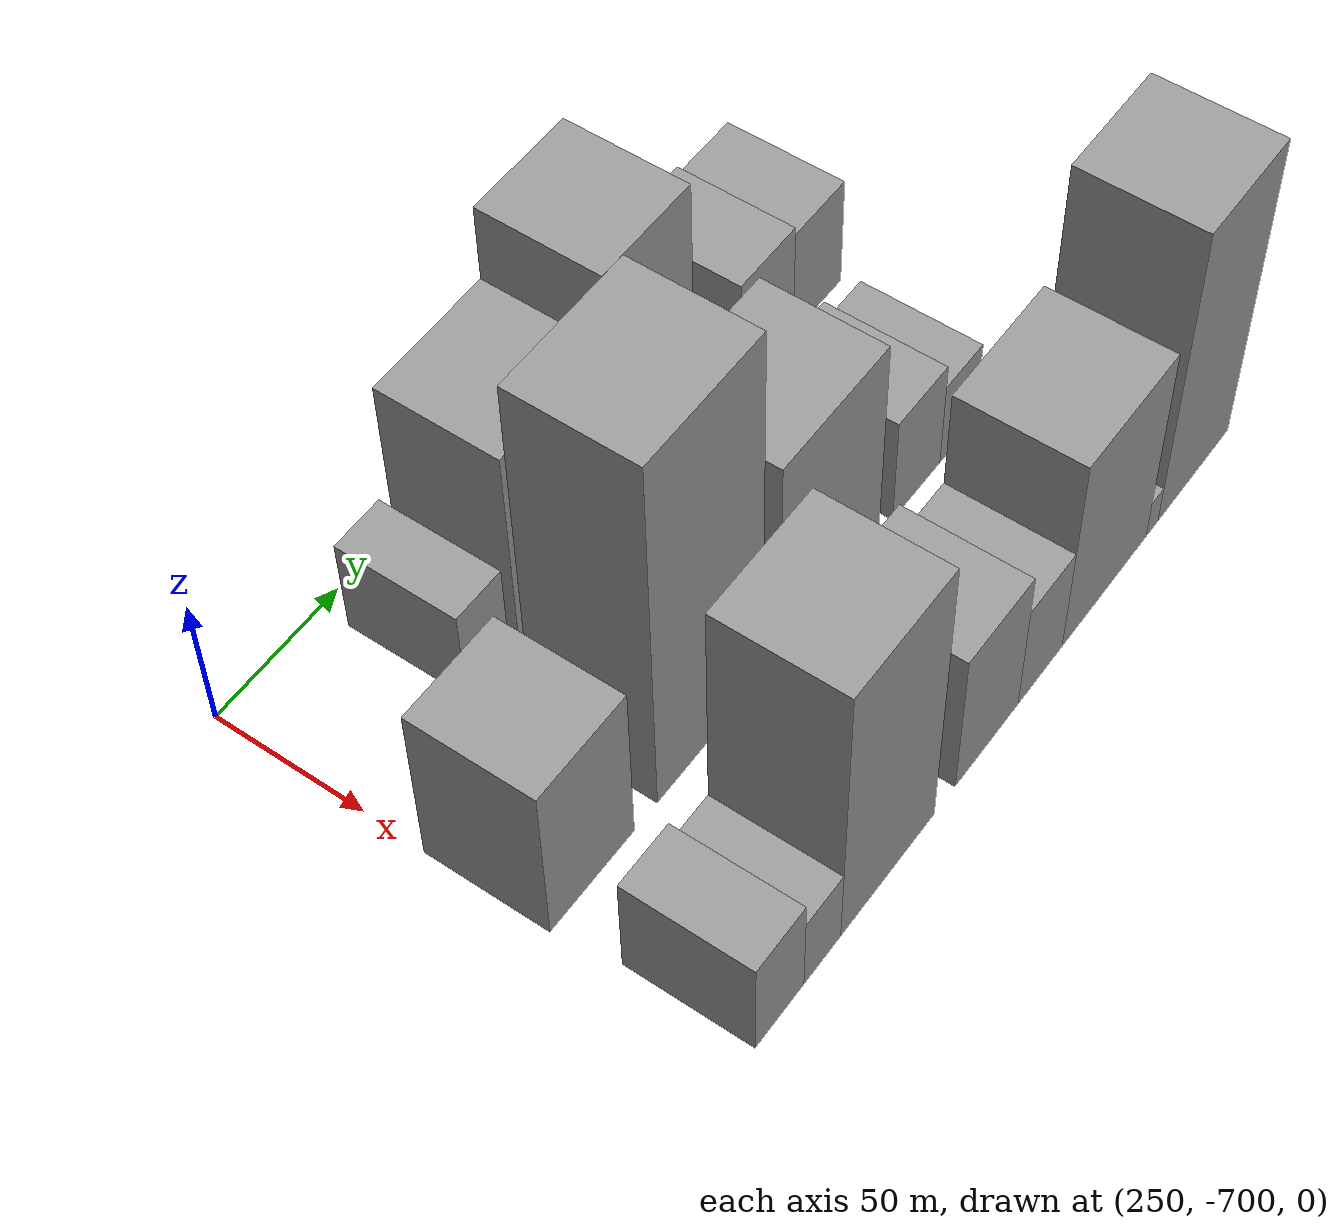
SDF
<sdf version="1.6">
 <world name="default">
  <model name="building_162">
   <static>1</static>
   <pose>280.0000 -648.3506 0 0.000000 0.000000 0.000000</pose>
   <link name="link">
    <pose>0 0 18.00 0 0 0</pose>
    <collision name="collision"><geometry><box><size>40.0000 18.4456 36.0000</size></box></geometry></collision>
    <visual name="visual">
     <cast_shadows>0</cast_shadows>
     <geometry><box><size>40.0000 18.4456 36.0000</size></box></geometry>
     <material>
      <script>
       <uri>model://grey_wall/materials/scripts</uri>
       <uri>model://grey_wall/materials/textures</uri>
       <name>vrc/grey_wall</name>
      </script>
     </material>
    </visual>
   </link>
  </model>
  <model name="building_163">
   <static>1</static>
   <pose>280.0000 -613.1263 0 0.000000 0.000000 0.000000</pose>
   <link name="link">
    <pose>0 0 39.00 0 0 0</pose>
    <collision name="collision"><geometry><box><size>40.0000 44.0031 78.0000</size></box></geometry></collision>
    <visual name="visual">
     <cast_shadows>0</cast_shadows>
     <geometry><box><size>40.0000 44.0031 78.0000</size></box></geometry>
     <material>
      <script>
       <uri>model://grey_wall/materials/scripts</uri>
       <uri>model://grey_wall/materials/textures</uri>
       <name>vrc/grey_wall</name>
      </script>
     </material>
    </visual>
   </link>
  </model>
  <model name="building_164">
   <static>1</static>
   <pose>280.0000 -572.3923 0 0.000000 0.000000 0.000000</pose>
   <link name="link">
    <pose>0 0 52.50 0 0 0</pose>
    <collision name="collision"><geometry><box><size>40.0000 37.4648 105.0000</size></box></geometry></collision>
    <visual name="visual">
     <cast_shadows>0</cast_shadows>
     <geometry><box><size>40.0000 37.4648 105.0000</size></box></geometry>
     <material>
      <script>
       <uri>model://grey_wall/materials/scripts</uri>
       <uri>model://grey_wall/materials/textures</uri>
       <name>vrc/grey_wall</name>
      </script>
     </material>
    </visual>
   </link>
  </model>
  <model name="building_165">
   <static>1</static>
   <pose>280.0000 -539.0606 0 0.000000 0.000000 0.000000</pose>
   <link name="link">
    <pose>0 0 10.50 0 0 0</pose>
    <collision name="collision"><geometry><box><size>40.0000 9.1985 21.0000</size></box></geometry></collision>
    <visual name="visual">
     <cast_shadows>0</cast_shadows>
     <geometry><box><size>40.0000 9.1985 21.0000</size></box></geometry>
     <material>
      <script>
       <uri>model://grey_wall/materials/scripts</uri>
       <uri>model://grey_wall/materials/textures</uri>
       <name>vrc/grey_wall</name>
      </script>
     </material>
    </visual>
   </link>
  </model>
  <model name="building_166">
   <static>1</static>
   <pose>280.0000 -518.3628 0 0.000000 0.000000 0.000000</pose>
   <link name="link">
    <pose>0 0 22.50 0 0 0</pose>
    <collision name="collision"><geometry><box><size>40.0000 26.1971 45.0000</size></box></geometry></collision>
    <visual name="visual">
     <cast_shadows>0</cast_shadows>
     <geometry><box><size>40.0000 26.1971 45.0000</size></box></geometry>
     <material>
      <script>
       <uri>model://grey_wall/materials/scripts</uri>
       <uri>model://grey_wall/materials/textures</uri>
       <name>vrc/grey_wall</name>
      </script>
     </material>
    </visual>
   </link>
  </model>
  <model name="building_167">
   <static>1</static>
   <pose>280.0000 -493.0035 0 0.000000 0.000000 0.000000</pose>
   <link name="link">
    <pose>0 0 21.00 0 0 0</pose>
    <collision name="collision"><geometry><box><size>40.0000 24.5216 42.0000</size></box></geometry></collision>
    <visual name="visual">
     <cast_shadows>0</cast_shadows>
     <geometry><box><size>40.0000 24.5216 42.0000</size></box></geometry>
     <material>
      <script>
       <uri>model://grey_wall/materials/scripts</uri>
       <uri>model://grey_wall/materials/textures</uri>
       <name>vrc/grey_wall</name>
      </script>
     </material>
    </visual>
   </link>
  </model>
  <model name="building_212">
   <static>1</static>
   <pose>340.0000 -682.8207 0 0.000000 0.000000 0.000000</pose>
   <link name="link">
    <pose>0 0 31.50 0 0 0</pose>
    <collision name="collision"><geometry><box><size>40.0000 35.5979 63.0000</size></box></geometry></collision>
    <visual name="visual">
     <cast_shadows>0</cast_shadows>
     <geometry><box><size>40.0000 35.5979 63.0000</size></box></geometry>
     <material>
      <script>
       <uri>model://grey_wall/materials/scripts</uri>
       <uri>model://grey_wall/materials/textures</uri>
       <name>vrc/grey_wall</name>
      </script>
     </material>
    </visual>
   </link>
  </model>
  <model name="building_213">
   <static>1</static>
   <pose>340.0000 -631.3113 0 0.000000 0.000000 0.000000</pose>
   <link name="link">
    <pose>0 0 70.50 0 0 0</pose>
    <collision name="collision"><geometry><box><size>40.0000 47.4210 141.0000</size></box></geometry></collision>
    <visual name="visual">
     <cast_shadows>0</cast_shadows>
     <geometry><box><size>40.0000 47.4210 141.0000</size></box></geometry>
     <material>
      <script>
       <uri>model://grey_wall/materials/scripts</uri>
       <uri>model://grey_wall/materials/textures</uri>
       <name>vrc/grey_wall</name>
      </script>
     </material>
    </visual>
   </link>
  </model>
  <model name="building_214">
   <static>1</static>
   <pose>340.0000 -603.6593 0 0.000000 0.000000 0.000000</pose>
   <link name="link">
    <pose>0 0 9.00 0 0 0</pose>
    <collision name="collision"><geometry><box><size>40.0000 7.8829 18.0000</size></box></geometry></collision>
    <visual name="visual">
     <cast_shadows>0</cast_shadows>
     <geometry><box><size>40.0000 7.8829 18.0000</size></box></geometry>
     <material>
      <script>
       <uri>model://grey_wall/materials/scripts</uri>
       <uri>model://grey_wall/materials/textures</uri>
       <name>vrc/grey_wall</name>
      </script>
     </material>
    </visual>
   </link>
  </model>
  <model name="building_215">
   <static>1</static>
   <pose>340.0000 -575.8074 0 0.000000 0.000000 0.000000</pose>
   <link name="link">
    <pose>0 0 40.50 0 0 0</pose>
    <collision name="collision"><geometry><box><size>40.0000 47.8208 81.0000</size></box></geometry></collision>
    <visual name="visual">
     <cast_shadows>0</cast_shadows>
     <geometry><box><size>40.0000 47.8208 81.0000</size></box></geometry>
     <material>
      <script>
       <uri>model://grey_wall/materials/scripts</uri>
       <uri>model://grey_wall/materials/textures</uri>
       <name>vrc/grey_wall</name>
      </script>
     </material>
    </visual>
   </link>
  </model>
  <model name="building_216">
   <static>1</static>
   <pose>340.0000 -532.8525 0 0.000000 0.000000 0.000000</pose>
   <link name="link">
    <pose>0 0 21.00 0 0 0</pose>
    <collision name="collision"><geometry><box><size>40.0000 24.0890 42.0000</size></box></geometry></collision>
    <visual name="visual">
     <cast_shadows>0</cast_shadows>
     <geometry><box><size>40.0000 24.0890 42.0000</size></box></geometry>
     <material>
      <script>
       <uri>model://grey_wall/materials/scripts</uri>
       <uri>model://grey_wall/materials/textures</uri>
       <name>vrc/grey_wall</name>
      </script>
     </material>
    </visual>
   </link>
  </model>
  <model name="building_217">
   <static>1</static>
   <pose>340.0000 -511.5202 0 0.000000 0.000000 0.000000</pose>
   <link name="link">
    <pose>0 0 16.50 0 0 0</pose>
    <collision name="collision"><geometry><box><size>40.0000 18.5757 33.0000</size></box></geometry></collision>
    <visual name="visual">
     <cast_shadows>0</cast_shadows>
     <geometry><box><size>40.0000 18.5757 33.0000</size></box></geometry>
     <material>
      <script>
       <uri>model://grey_wall/materials/scripts</uri>
       <uri>model://grey_wall/materials/textures</uri>
       <name>vrc/grey_wall</name>
      </script>
     </material>
    </visual>
   </link>
  </model>
  <model name="building_262">
   <static>1</static>
   <pose>400.0000 -687.0284 0 0.000000 0.000000 0.000000</pose>
   <link name="link">
    <pose>0 0 19.50 0 0 0</pose>
    <collision name="collision"><geometry><box><size>40.0000 20.9491 39.0000</size></box></geometry></collision>
    <visual name="visual">
     <cast_shadows>0</cast_shadows>
     <geometry><box><size>40.0000 20.9491 39.0000</size></box></geometry>
     <material>
      <script>
       <uri>model://grey_wall/materials/scripts</uri>
       <uri>model://grey_wall/materials/textures</uri>
       <name>vrc/grey_wall</name>
      </script>
     </material>
    </visual>
   </link>
  </model>
  <model name="building_263">
   <static>1</static>
   <pose>400.0000 -668.4085 0 0.000000 0.000000 0.000000</pose>
   <link name="link">
    <pose>0 0 15.00 0 0 0</pose>
    <collision name="collision"><geometry><box><size>40.0000 16.2906 30.0000</size></box></geometry></collision>
    <visual name="visual">
     <cast_shadows>0</cast_shadows>
     <geometry><box><size>40.0000 16.2906 30.0000</size></box></geometry>
     <material>
      <script>
       <uri>model://grey_wall/materials/scripts</uri>
       <uri>model://grey_wall/materials/textures</uri>
       <name>vrc/grey_wall</name>
      </script>
     </material>
    </visual>
   </link>
  </model>
  <model name="building_264">
   <static>1</static>
   <pose>400.0000 -638.7300 0 0.000000 0.000000 0.000000</pose>
   <link name="link">
    <pose>0 0 54.00 0 0 0</pose>
    <collision name="collision"><geometry><box><size>40.0000 43.0665 108.0000</size></box></geometry></collision>
    <visual name="visual">
     <cast_shadows>0</cast_shadows>
     <geometry><box><size>40.0000 43.0665 108.0000</size></box></geometry>
     <material>
      <script>
       <uri>model://grey_wall/materials/scripts</uri>
       <uri>model://grey_wall/materials/textures</uri>
       <name>vrc/grey_wall</name>
      </script>
     </material>
    </visual>
   </link>
  </model>
  <model name="building_265">
   <static>1</static>
   <pose>400.0000 -591.8578 0 0.000000 0.000000 0.000000</pose>
   <link name="link">
    <pose>0 0 28.50 0 0 0</pose>
    <collision name="collision"><geometry><box><size>40.0000 30.6779 57.0000</size></box></geometry></collision>
    <visual name="visual">
     <cast_shadows>0</cast_shadows>
     <geometry><box><size>40.0000 30.6779 57.0000</size></box></geometry>
     <material>
      <script>
       <uri>model://grey_wall/materials/scripts</uri>
       <uri>model://grey_wall/materials/textures</uri>
       <name>vrc/grey_wall</name>
      </script>
     </material>
    </visual>
   </link>
  </model>
  <model name="building_266">
   <static>1</static>
   <pose>400.0000 -565.4075 0 0.000000 0.000000 0.000000</pose>
   <link name="link">
    <pose>0 0 21.00 0 0 0</pose>
    <collision name="collision"><geometry><box><size>40.0000 22.2228 42.0000</size></box></geometry></collision>
    <visual name="visual">
     <cast_shadows>0</cast_shadows>
     <geometry><box><size>40.0000 22.2228 42.0000</size></box></geometry>
     <material>
      <script>
       <uri>model://grey_wall/materials/scripts</uri>
       <uri>model://grey_wall/materials/textures</uri>
       <name>vrc/grey_wall</name>
      </script>
     </material>
    </visual>
   </link>
  </model>
  <model name="building_267">
   <static>1</static>
   <pose>400.0000 -532.2468 0 0.000000 0.000000 0.000000</pose>
   <link name="link">
    <pose>0 0 39.00 0 0 0</pose>
    <collision name="collision"><geometry><box><size>40.0000 44.0987 78.0000</size></box></geometry></collision>
    <visual name="visual">
     <cast_shadows>0</cast_shadows>
     <geometry><box><size>40.0000 44.0987 78.0000</size></box></geometry>
     <material>
      <script>
       <uri>model://grey_wall/materials/scripts</uri>
       <uri>model://grey_wall/materials/textures</uri>
       <name>vrc/grey_wall</name>
      </script>
     </material>
    </visual>
   </link>
  </model>
  <model name="building_268">
   <static>1</static>
   <pose>400.0000 -506.9734 0 0.000000 0.000000 0.000000</pose>
   <link name="link">
    <pose>0 0 7.50 0 0 0</pose>
    <collision name="collision"><geometry><box><size>40.0000 6.4481 15.0000</size></box></geometry></collision>
    <visual name="visual">
     <cast_shadows>0</cast_shadows>
     <geometry><box><size>40.0000 6.4481 15.0000</size></box></geometry>
     <material>
      <script>
       <uri>model://grey_wall/materials/scripts</uri>
       <uri>model://grey_wall/materials/textures</uri>
       <name>vrc/grey_wall</name>
      </script>
     </material>
    </visual>
   </link>
  </model>
  <model name="building_269">
   <static>1</static>
   <pose>400.0000 -484.2646 0 0.000000 0.000000 0.000000</pose>
   <link name="link">
    <pose>0 0 58.50 0 0 0</pose>
    <collision name="collision"><geometry><box><size>40.0000 38.9694 117.0000</size></box></geometry></collision>
    <visual name="visual">
     <cast_shadows>0</cast_shadows>
     <geometry><box><size>40.0000 38.9694 117.0000</size></box></geometry>
     <material>
      <script>
       <uri>model://grey_wall/materials/scripts</uri>
       <uri>model://grey_wall/materials/textures</uri>
       <name>vrc/grey_wall</name>
      </script>
     </material>
    </visual>
   </link>
  </model>
 </world>
</sdf>
